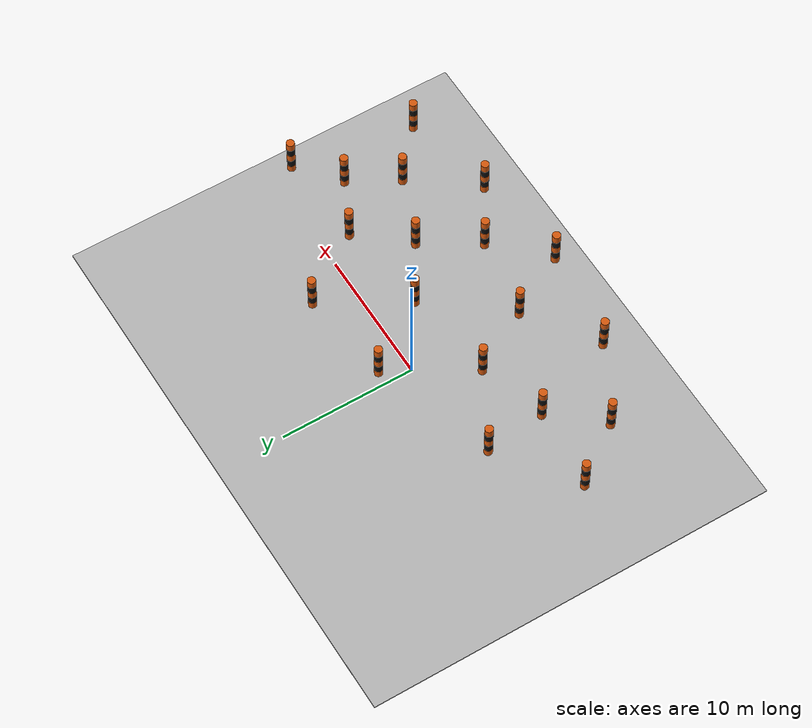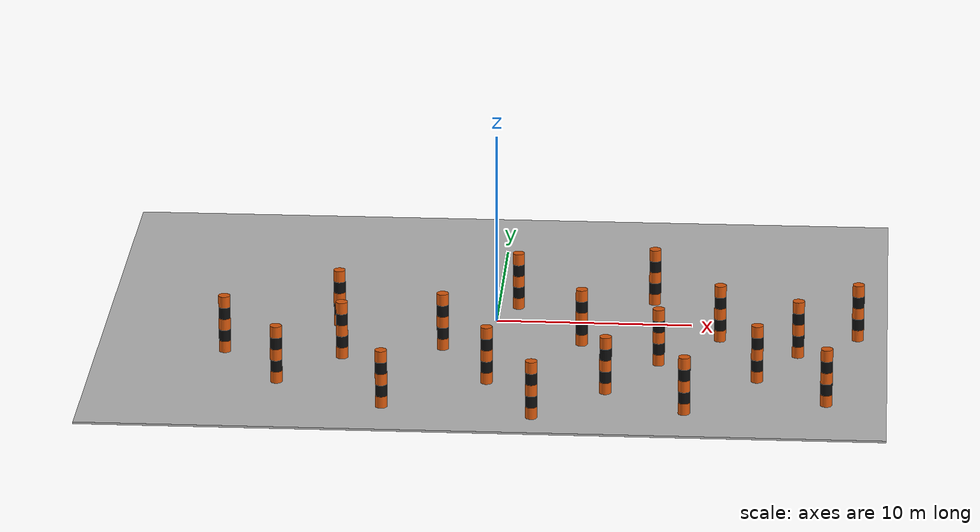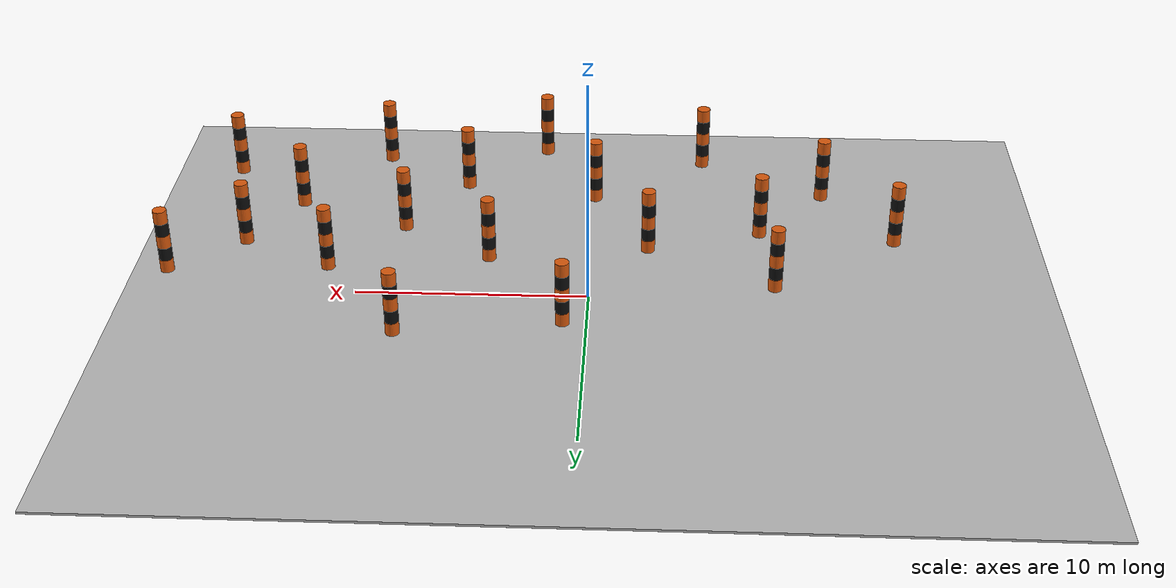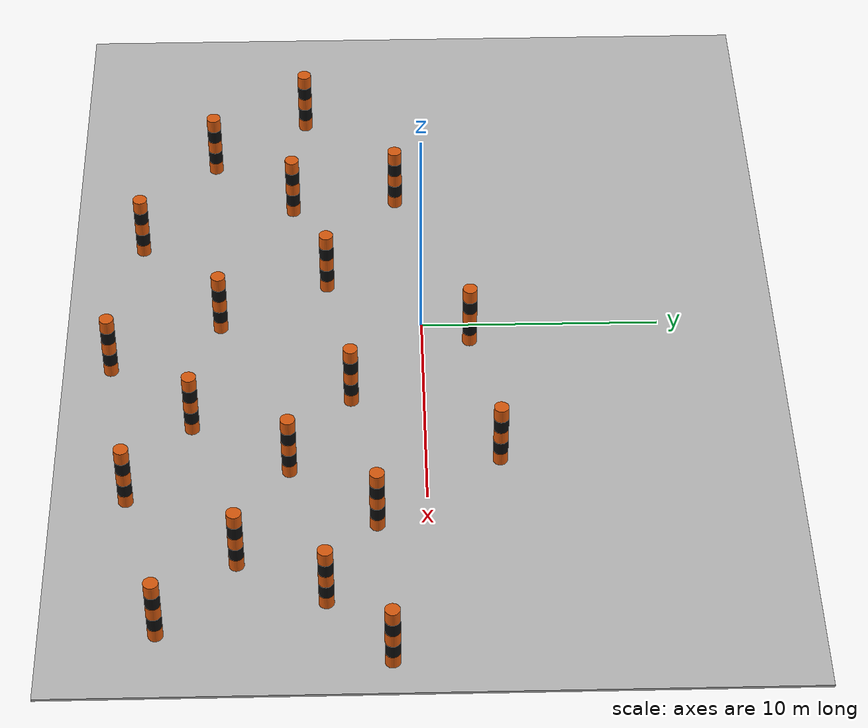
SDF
<sdf version="1.6">
 <world name="u_shape_lightweight">
  <model name="ground">
   <static>true</static>
   <link name="link">
    <collision name="collision"><geometry><box><size>40 30 0.1</size></box></geometry></collision>
    <visual name="visual"><geometry><box><size>40 30 0.1</size></box></geometry></visual>
   </link>
   <pose>0 0 -0.05 0 0 0</pose>
  </model>
  <model name="pole_04">
   <static>true</static>
   <pose>1 2 0 0 0 0</pose>
   <link name="link">
    <collision name="collision">
     <pose>0 0 1.5 0 0 0</pose>
     <geometry><cylinder><radius>0.30</radius><length>3.0</length></cylinder></geometry>
    </collision>
    <visual name="b1">
     <pose>0 0 0.3 0 0 0</pose>
     <geometry><cylinder><radius>0.30</radius><length>0.6</length></cylinder></geometry>
     <material><ambient>0.85 0.35 0.05 1</ambient><diffuse>0.85 0.35 0.05 1</diffuse></material>
    </visual>
    <visual name="b2">
     <pose>0 0 0.9 0 0 0</pose>
     <geometry><cylinder><radius>0.30</radius><length>0.6</length></cylinder></geometry>
     <material><ambient>0.05 0.05 0.05 1</ambient><diffuse>0.05 0.05 0.05 1</diffuse></material>
    </visual>
    <visual name="b3">
     <pose>0 0 1.5 0 0 0</pose>
     <geometry><cylinder><radius>0.30</radius><length>0.6</length></cylinder></geometry>
     <material><ambient>0.85 0.35 0.05 1</ambient><diffuse>0.85 0.35 0.05 1</diffuse></material>
    </visual>
    <visual name="b4">
     <pose>0 0 2.1 0 0 0</pose>
     <geometry><cylinder><radius>0.30</radius><length>0.6</length></cylinder></geometry>
     <material><ambient>0.05 0.05 0.05 1</ambient><diffuse>0.05 0.05 0.05 1</diffuse></material>
    </visual>
    <visual name="b5">
     <pose>0 0 2.7 0 0 0</pose>
     <geometry><cylinder><radius>0.30</radius><length>0.6</length></cylinder></geometry>
     <material><ambient>0.85 0.35 0.05 1</ambient><diffuse>0.85 0.35 0.05 1</diffuse></material>
    </visual>
   </link>
  </model>
  <model name="pole_21">
   <static>true</static>
   <pose>-8 -1 0 0 0 0</pose>
   <link name="link">
    <collision name="collision">
     <pose>0 0 1.5 0 0 0</pose>
     <geometry><cylinder><radius>0.30</radius><length>3.0</length></cylinder></geometry>
    </collision>
    <visual name="b1">
     <pose>0 0 0.3 0 0 0</pose>
     <geometry><cylinder><radius>0.30</radius><length>0.6</length></cylinder></geometry>
     <material><ambient>0.85 0.35 0.05 1</ambient><diffuse>0.85 0.35 0.05 1</diffuse></material>
    </visual>
    <visual name="b2">
     <pose>0 0 0.9 0 0 0</pose>
     <geometry><cylinder><radius>0.30</radius><length>0.6</length></cylinder></geometry>
     <material><ambient>0.05 0.05 0.05 1</ambient><diffuse>0.05 0.05 0.05 1</diffuse></material>
    </visual>
    <visual name="b3">
     <pose>0 0 1.5 0 0 0</pose>
     <geometry><cylinder><radius>0.30</radius><length>0.6</length></cylinder></geometry>
     <material><ambient>0.85 0.35 0.05 1</ambient><diffuse>0.85 0.35 0.05 1</diffuse></material>
    </visual>
    <visual name="b4">
     <pose>0 0 2.1 0 0 0</pose>
     <geometry><cylinder><radius>0.30</radius><length>0.6</length></cylinder></geometry>
     <material><ambient>0.05 0.05 0.05 1</ambient><diffuse>0.05 0.05 0.05 1</diffuse></material>
    </visual>
    <visual name="b5">
     <pose>0 0 2.7 0 0 0</pose>
     <geometry><cylinder><radius>0.30</radius><length>0.6</length></cylinder></geometry>
     <material><ambient>0.85 0.35 0.05 1</ambient><diffuse>0.85 0.35 0.05 1</diffuse></material>
    </visual>
   </link>
  </model>
  <model name="pole_23">
   <static>true</static>
   <pose>8 3 0 0 0 0</pose>
   <link name="link">
    <collision name="collision">
     <pose>0 0 1.5 0 0 0</pose>
     <geometry><cylinder><radius>0.30</radius><length>3.0</length></cylinder></geometry>
    </collision>
    <visual name="b1">
     <pose>0 0 0.3 0 0 0</pose>
     <geometry><cylinder><radius>0.30</radius><length>0.6</length></cylinder></geometry>
     <material><ambient>0.85 0.35 0.05 1</ambient><diffuse>0.85 0.35 0.05 1</diffuse></material>
    </visual>
    <visual name="b2">
     <pose>0 0 0.9 0 0 0</pose>
     <geometry><cylinder><radius>0.30</radius><length>0.6</length></cylinder></geometry>
     <material><ambient>0.05 0.05 0.05 1</ambient><diffuse>0.05 0.05 0.05 1</diffuse></material>
    </visual>
    <visual name="b3">
     <pose>0 0 1.5 0 0 0</pose>
     <geometry><cylinder><radius>0.30</radius><length>0.6</length></cylinder></geometry>
     <material><ambient>0.85 0.35 0.05 1</ambient><diffuse>0.85 0.35 0.05 1</diffuse></material>
    </visual>
    <visual name="b4">
     <pose>0 0 2.1 0 0 0</pose>
     <geometry><cylinder><radius>0.30</radius><length>0.6</length></cylinder></geometry>
     <material><ambient>0.05 0.05 0.05 1</ambient><diffuse>0.05 0.05 0.05 1</diffuse></material>
    </visual>
    <visual name="b5">
     <pose>0 0 2.7 0 0 0</pose>
     <geometry><cylinder><radius>0.30</radius><length>0.6</length></cylinder></geometry>
     <material><ambient>0.85 0.35 0.05 1</ambient><diffuse>0.85 0.35 0.05 1</diffuse></material>
    </visual>
   </link>
  </model>
  <model name="pole_25">
   <static>true</static>
   <pose>-13.5 -5 0 0 0 0</pose>
   <link name="link">
    <collision name="collision">
     <pose>0 0 1.5 0 0 0</pose>
     <geometry><cylinder><radius>0.30</radius><length>3.0</length></cylinder></geometry>
    </collision>
    <visual name="b1">
     <pose>0 0 0.3 0 0 0</pose>
     <geometry><cylinder><radius>0.30</radius><length>0.6</length></cylinder></geometry>
     <material><ambient>0.85 0.35 0.05 1</ambient><diffuse>0.85 0.35 0.05 1</diffuse></material>
    </visual>
    <visual name="b2">
     <pose>0 0 0.9 0 0 0</pose>
     <geometry><cylinder><radius>0.30</radius><length>0.6</length></cylinder></geometry>
     <material><ambient>0.05 0.05 0.05 1</ambient><diffuse>0.05 0.05 0.05 1</diffuse></material>
    </visual>
    <visual name="b3">
     <pose>0 0 1.5 0 0 0</pose>
     <geometry><cylinder><radius>0.30</radius><length>0.6</length></cylinder></geometry>
     <material><ambient>0.85 0.35 0.05 1</ambient><diffuse>0.85 0.35 0.05 1</diffuse></material>
    </visual>
    <visual name="b4">
     <pose>0 0 2.1 0 0 0</pose>
     <geometry><cylinder><radius>0.30</radius><length>0.6</length></cylinder></geometry>
     <material><ambient>0.05 0.05 0.05 1</ambient><diffuse>0.05 0.05 0.05 1</diffuse></material>
    </visual>
    <visual name="b5">
     <pose>0 0 2.7 0 0 0</pose>
     <geometry><cylinder><radius>0.30</radius><length>0.6</length></cylinder></geometry>
     <material><ambient>0.85 0.35 0.05 1</ambient><diffuse>0.85 0.35 0.05 1</diffuse></material>
    </visual>
   </link>
  </model>
  <model name="pole_26">
   <static>true</static>
   <pose>-10.5 -9 0 0 0 0</pose>
   <link name="link">
    <collision name="collision">
     <pose>0 0 1.5 0 0 0</pose>
     <geometry><cylinder><radius>0.30</radius><length>3.0</length></cylinder></geometry>
    </collision>
    <visual name="b1">
     <pose>0 0 0.3 0 0 0</pose>
     <geometry><cylinder><radius>0.30</radius><length>0.6</length></cylinder></geometry>
     <material><ambient>0.85 0.35 0.05 1</ambient><diffuse>0.85 0.35 0.05 1</diffuse></material>
    </visual>
    <visual name="b2">
     <pose>0 0 0.9 0 0 0</pose>
     <geometry><cylinder><radius>0.30</radius><length>0.6</length></cylinder></geometry>
     <material><ambient>0.05 0.05 0.05 1</ambient><diffuse>0.05 0.05 0.05 1</diffuse></material>
    </visual>
    <visual name="b3">
     <pose>0 0 1.5 0 0 0</pose>
     <geometry><cylinder><radius>0.30</radius><length>0.6</length></cylinder></geometry>
     <material><ambient>0.85 0.35 0.05 1</ambient><diffuse>0.85 0.35 0.05 1</diffuse></material>
    </visual>
    <visual name="b4">
     <pose>0 0 2.1 0 0 0</pose>
     <geometry><cylinder><radius>0.30</radius><length>0.6</length></cylinder></geometry>
     <material><ambient>0.05 0.05 0.05 1</ambient><diffuse>0.05 0.05 0.05 1</diffuse></material>
    </visual>
    <visual name="b5">
     <pose>0 0 2.7 0 0 0</pose>
     <geometry><cylinder><radius>0.30</radius><length>0.6</length></cylinder></geometry>
     <material><ambient>0.85 0.35 0.05 1</ambient><diffuse>0.85 0.35 0.05 1</diffuse></material>
    </visual>
   </link>
  </model>
  <model name="pole_27">
   <static>true</static>
   <pose>-7.5 -5.5 0 0 0 0</pose>
   <link name="link">
    <collision name="collision">
     <pose>0 0 1.5 0 0 0</pose>
     <geometry><cylinder><radius>0.30</radius><length>3.0</length></cylinder></geometry>
    </collision>
    <visual name="b1">
     <pose>0 0 0.3 0 0 0</pose>
     <geometry><cylinder><radius>0.30</radius><length>0.6</length></cylinder></geometry>
     <material><ambient>0.85 0.35 0.05 1</ambient><diffuse>0.85 0.35 0.05 1</diffuse></material>
    </visual>
    <visual name="b2">
     <pose>0 0 0.9 0 0 0</pose>
     <geometry><cylinder><radius>0.30</radius><length>0.6</length></cylinder></geometry>
     <material><ambient>0.05 0.05 0.05 1</ambient><diffuse>0.05 0.05 0.05 1</diffuse></material>
    </visual>
    <visual name="b3">
     <pose>0 0 1.5 0 0 0</pose>
     <geometry><cylinder><radius>0.30</radius><length>0.6</length></cylinder></geometry>
     <material><ambient>0.85 0.35 0.05 1</ambient><diffuse>0.85 0.35 0.05 1</diffuse></material>
    </visual>
    <visual name="b4">
     <pose>0 0 2.1 0 0 0</pose>
     <geometry><cylinder><radius>0.30</radius><length>0.6</length></cylinder></geometry>
     <material><ambient>0.05 0.05 0.05 1</ambient><diffuse>0.05 0.05 0.05 1</diffuse></material>
    </visual>
    <visual name="b5">
     <pose>0 0 2.7 0 0 0</pose>
     <geometry><cylinder><radius>0.30</radius><length>0.6</length></cylinder></geometry>
     <material><ambient>0.85 0.35 0.05 1</ambient><diffuse>0.85 0.35 0.05 1</diffuse></material>
    </visual>
   </link>
  </model>
  <model name="pole_28">
   <static>true</static>
   <pose>-5 -12 0 0 0 0</pose>
   <link name="link">
    <collision name="collision">
     <pose>0 0 1.5 0 0 0</pose>
     <geometry><cylinder><radius>0.30</radius><length>3.0</length></cylinder></geometry>
    </collision>
    <visual name="b1">
     <pose>0 0 0.3 0 0 0</pose>
     <geometry><cylinder><radius>0.30</radius><length>0.6</length></cylinder></geometry>
     <material><ambient>0.85 0.35 0.05 1</ambient><diffuse>0.85 0.35 0.05 1</diffuse></material>
    </visual>
    <visual name="b2">
     <pose>0 0 0.9 0 0 0</pose>
     <geometry><cylinder><radius>0.30</radius><length>0.6</length></cylinder></geometry>
     <material><ambient>0.05 0.05 0.05 1</ambient><diffuse>0.05 0.05 0.05 1</diffuse></material>
    </visual>
    <visual name="b3">
     <pose>0 0 1.5 0 0 0</pose>
     <geometry><cylinder><radius>0.30</radius><length>0.6</length></cylinder></geometry>
     <material><ambient>0.85 0.35 0.05 1</ambient><diffuse>0.85 0.35 0.05 1</diffuse></material>
    </visual>
    <visual name="b4">
     <pose>0 0 2.1 0 0 0</pose>
     <geometry><cylinder><radius>0.30</radius><length>0.6</length></cylinder></geometry>
     <material><ambient>0.05 0.05 0.05 1</ambient><diffuse>0.05 0.05 0.05 1</diffuse></material>
    </visual>
    <visual name="b5">
     <pose>0 0 2.7 0 0 0</pose>
     <geometry><cylinder><radius>0.30</radius><length>0.6</length></cylinder></geometry>
     <material><ambient>0.85 0.35 0.05 1</ambient><diffuse>0.85 0.35 0.05 1</diffuse></material>
    </visual>
   </link>
  </model>
  <model name="pole_29">
   <static>true</static>
   <pose>-2.5 -4 0 0 0 0</pose>
   <link name="link">
    <collision name="collision">
     <pose>0 0 1.5 0 0 0</pose>
     <geometry><cylinder><radius>0.30</radius><length>3.0</length></cylinder></geometry>
    </collision>
    <visual name="b1">
     <pose>0 0 0.3 0 0 0</pose>
     <geometry><cylinder><radius>0.30</radius><length>0.6</length></cylinder></geometry>
     <material><ambient>0.85 0.35 0.05 1</ambient><diffuse>0.85 0.35 0.05 1</diffuse></material>
    </visual>
    <visual name="b2">
     <pose>0 0 0.9 0 0 0</pose>
     <geometry><cylinder><radius>0.30</radius><length>0.6</length></cylinder></geometry>
     <material><ambient>0.05 0.05 0.05 1</ambient><diffuse>0.05 0.05 0.05 1</diffuse></material>
    </visual>
    <visual name="b3">
     <pose>0 0 1.5 0 0 0</pose>
     <geometry><cylinder><radius>0.30</radius><length>0.6</length></cylinder></geometry>
     <material><ambient>0.85 0.35 0.05 1</ambient><diffuse>0.85 0.35 0.05 1</diffuse></material>
    </visual>
    <visual name="b4">
     <pose>0 0 2.1 0 0 0</pose>
     <geometry><cylinder><radius>0.30</radius><length>0.6</length></cylinder></geometry>
     <material><ambient>0.05 0.05 0.05 1</ambient><diffuse>0.05 0.05 0.05 1</diffuse></material>
    </visual>
    <visual name="b5">
     <pose>0 0 2.7 0 0 0</pose>
     <geometry><cylinder><radius>0.30</radius><length>0.6</length></cylinder></geometry>
     <material><ambient>0.85 0.35 0.05 1</ambient><diffuse>0.85 0.35 0.05 1</diffuse></material>
    </visual>
   </link>
  </model>
  <model name="pole_30">
   <static>true</static>
   <pose>0 -8.5 0 0 0 0</pose>
   <link name="link">
    <collision name="collision">
     <pose>0 0 1.5 0 0 0</pose>
     <geometry><cylinder><radius>0.30</radius><length>3.0</length></cylinder></geometry>
    </collision>
    <visual name="b1">
     <pose>0 0 0.3 0 0 0</pose>
     <geometry><cylinder><radius>0.30</radius><length>0.6</length></cylinder></geometry>
     <material><ambient>0.85 0.35 0.05 1</ambient><diffuse>0.85 0.35 0.05 1</diffuse></material>
    </visual>
    <visual name="b2">
     <pose>0 0 0.9 0 0 0</pose>
     <geometry><cylinder><radius>0.30</radius><length>0.6</length></cylinder></geometry>
     <material><ambient>0.05 0.05 0.05 1</ambient><diffuse>0.05 0.05 0.05 1</diffuse></material>
    </visual>
    <visual name="b3">
     <pose>0 0 1.5 0 0 0</pose>
     <geometry><cylinder><radius>0.30</radius><length>0.6</length></cylinder></geometry>
     <material><ambient>0.85 0.35 0.05 1</ambient><diffuse>0.85 0.35 0.05 1</diffuse></material>
    </visual>
    <visual name="b4">
     <pose>0 0 2.1 0 0 0</pose>
     <geometry><cylinder><radius>0.30</radius><length>0.6</length></cylinder></geometry>
     <material><ambient>0.05 0.05 0.05 1</ambient><diffuse>0.05 0.05 0.05 1</diffuse></material>
    </visual>
    <visual name="b5">
     <pose>0 0 2.7 0 0 0</pose>
     <geometry><cylinder><radius>0.30</radius><length>0.6</length></cylinder></geometry>
     <material><ambient>0.85 0.35 0.05 1</ambient><diffuse>0.85 0.35 0.05 1</diffuse></material>
    </visual>
   </link>
  </model>
  <model name="pole_31">
   <static>true</static>
   <pose>2.5 -13 0 0 0 0</pose>
   <link name="link">
    <collision name="collision">
     <pose>0 0 1.5 0 0 0</pose>
     <geometry><cylinder><radius>0.30</radius><length>3.0</length></cylinder></geometry>
    </collision>
    <visual name="b1">
     <pose>0 0 0.3 0 0 0</pose>
     <geometry><cylinder><radius>0.30</radius><length>0.6</length></cylinder></geometry>
     <material><ambient>0.85 0.35 0.05 1</ambient><diffuse>0.85 0.35 0.05 1</diffuse></material>
    </visual>
    <visual name="b2">
     <pose>0 0 0.9 0 0 0</pose>
     <geometry><cylinder><radius>0.30</radius><length>0.6</length></cylinder></geometry>
     <material><ambient>0.05 0.05 0.05 1</ambient><diffuse>0.05 0.05 0.05 1</diffuse></material>
    </visual>
    <visual name="b3">
     <pose>0 0 1.5 0 0 0</pose>
     <geometry><cylinder><radius>0.30</radius><length>0.6</length></cylinder></geometry>
     <material><ambient>0.85 0.35 0.05 1</ambient><diffuse>0.85 0.35 0.05 1</diffuse></material>
    </visual>
    <visual name="b4">
     <pose>0 0 2.1 0 0 0</pose>
     <geometry><cylinder><radius>0.30</radius><length>0.6</length></cylinder></geometry>
     <material><ambient>0.05 0.05 0.05 1</ambient><diffuse>0.05 0.05 0.05 1</diffuse></material>
    </visual>
    <visual name="b5">
     <pose>0 0 2.7 0 0 0</pose>
     <geometry><cylinder><radius>0.30</radius><length>0.6</length></cylinder></geometry>
     <material><ambient>0.85 0.35 0.05 1</ambient><diffuse>0.85 0.35 0.05 1</diffuse></material>
    </visual>
   </link>
  </model>
  <model name="pole_32">
   <static>true</static>
   <pose>4.5 -3 0 0 0 0</pose>
   <link name="link">
    <collision name="collision">
     <pose>0 0 1.5 0 0 0</pose>
     <geometry><cylinder><radius>0.30</radius><length>3.0</length></cylinder></geometry>
    </collision>
    <visual name="b1">
     <pose>0 0 0.3 0 0 0</pose>
     <geometry><cylinder><radius>0.30</radius><length>0.6</length></cylinder></geometry>
     <material><ambient>0.85 0.35 0.05 1</ambient><diffuse>0.85 0.35 0.05 1</diffuse></material>
    </visual>
    <visual name="b2">
     <pose>0 0 0.9 0 0 0</pose>
     <geometry><cylinder><radius>0.30</radius><length>0.6</length></cylinder></geometry>
     <material><ambient>0.05 0.05 0.05 1</ambient><diffuse>0.05 0.05 0.05 1</diffuse></material>
    </visual>
    <visual name="b3">
     <pose>0 0 1.5 0 0 0</pose>
     <geometry><cylinder><radius>0.30</radius><length>0.6</length></cylinder></geometry>
     <material><ambient>0.85 0.35 0.05 1</ambient><diffuse>0.85 0.35 0.05 1</diffuse></material>
    </visual>
    <visual name="b4">
     <pose>0 0 2.1 0 0 0</pose>
     <geometry><cylinder><radius>0.30</radius><length>0.6</length></cylinder></geometry>
     <material><ambient>0.05 0.05 0.05 1</ambient><diffuse>0.05 0.05 0.05 1</diffuse></material>
    </visual>
    <visual name="b5">
     <pose>0 0 2.7 0 0 0</pose>
     <geometry><cylinder><radius>0.30</radius><length>0.6</length></cylinder></geometry>
     <material><ambient>0.85 0.35 0.05 1</ambient><diffuse>0.85 0.35 0.05 1</diffuse></material>
    </visual>
   </link>
  </model>
  <model name="pole_33">
   <static>true</static>
   <pose>6 -9.5 0 0 0 0</pose>
   <link name="link">
    <collision name="collision">
     <pose>0 0 1.5 0 0 0</pose>
     <geometry><cylinder><radius>0.30</radius><length>3.0</length></cylinder></geometry>
    </collision>
    <visual name="b1">
     <pose>0 0 0.3 0 0 0</pose>
     <geometry><cylinder><radius>0.30</radius><length>0.6</length></cylinder></geometry>
     <material><ambient>0.85 0.35 0.05 1</ambient><diffuse>0.85 0.35 0.05 1</diffuse></material>
    </visual>
    <visual name="b2">
     <pose>0 0 0.9 0 0 0</pose>
     <geometry><cylinder><radius>0.30</radius><length>0.6</length></cylinder></geometry>
     <material><ambient>0.05 0.05 0.05 1</ambient><diffuse>0.05 0.05 0.05 1</diffuse></material>
    </visual>
    <visual name="b3">
     <pose>0 0 1.5 0 0 0</pose>
     <geometry><cylinder><radius>0.30</radius><length>0.6</length></cylinder></geometry>
     <material><ambient>0.85 0.35 0.05 1</ambient><diffuse>0.85 0.35 0.05 1</diffuse></material>
    </visual>
    <visual name="b4">
     <pose>0 0 2.1 0 0 0</pose>
     <geometry><cylinder><radius>0.30</radius><length>0.6</length></cylinder></geometry>
     <material><ambient>0.05 0.05 0.05 1</ambient><diffuse>0.05 0.05 0.05 1</diffuse></material>
    </visual>
    <visual name="b5">
     <pose>0 0 2.7 0 0 0</pose>
     <geometry><cylinder><radius>0.30</radius><length>0.6</length></cylinder></geometry>
     <material><ambient>0.85 0.35 0.05 1</ambient><diffuse>0.85 0.35 0.05 1</diffuse></material>
    </visual>
   </link>
  </model>
  <model name="pole_34">
   <static>true</static>
   <pose>8.5 -5.5 0 0 0 0</pose>
   <link name="link">
    <collision name="collision">
     <pose>0 0 1.5 0 0 0</pose>
     <geometry><cylinder><radius>0.30</radius><length>3.0</length></cylinder></geometry>
    </collision>
    <visual name="b1">
     <pose>0 0 0.3 0 0 0</pose>
     <geometry><cylinder><radius>0.30</radius><length>0.6</length></cylinder></geometry>
     <material><ambient>0.85 0.35 0.05 1</ambient><diffuse>0.85 0.35 0.05 1</diffuse></material>
    </visual>
    <visual name="b2">
     <pose>0 0 0.9 0 0 0</pose>
     <geometry><cylinder><radius>0.30</radius><length>0.6</length></cylinder></geometry>
     <material><ambient>0.05 0.05 0.05 1</ambient><diffuse>0.05 0.05 0.05 1</diffuse></material>
    </visual>
    <visual name="b3">
     <pose>0 0 1.5 0 0 0</pose>
     <geometry><cylinder><radius>0.30</radius><length>0.6</length></cylinder></geometry>
     <material><ambient>0.85 0.35 0.05 1</ambient><diffuse>0.85 0.35 0.05 1</diffuse></material>
    </visual>
    <visual name="b4">
     <pose>0 0 2.1 0 0 0</pose>
     <geometry><cylinder><radius>0.30</radius><length>0.6</length></cylinder></geometry>
     <material><ambient>0.05 0.05 0.05 1</ambient><diffuse>0.05 0.05 0.05 1</diffuse></material>
    </visual>
    <visual name="b5">
     <pose>0 0 2.7 0 0 0</pose>
     <geometry><cylinder><radius>0.30</radius><length>0.6</length></cylinder></geometry>
     <material><ambient>0.85 0.35 0.05 1</ambient><diffuse>0.85 0.35 0.05 1</diffuse></material>
    </visual>
   </link>
  </model>
  <model name="pole_35">
   <static>true</static>
   <pose>10 -12 0 0 0 0</pose>
   <link name="link">
    <collision name="collision">
     <pose>0 0 1.5 0 0 0</pose>
     <geometry><cylinder><radius>0.30</radius><length>3.0</length></cylinder></geometry>
    </collision>
    <visual name="b1">
     <pose>0 0 0.3 0 0 0</pose>
     <geometry><cylinder><radius>0.30</radius><length>0.6</length></cylinder></geometry>
     <material><ambient>0.85 0.35 0.05 1</ambient><diffuse>0.85 0.35 0.05 1</diffuse></material>
    </visual>
    <visual name="b2">
     <pose>0 0 0.9 0 0 0</pose>
     <geometry><cylinder><radius>0.30</radius><length>0.6</length></cylinder></geometry>
     <material><ambient>0.05 0.05 0.05 1</ambient><diffuse>0.05 0.05 0.05 1</diffuse></material>
    </visual>
    <visual name="b3">
     <pose>0 0 1.5 0 0 0</pose>
     <geometry><cylinder><radius>0.30</radius><length>0.6</length></cylinder></geometry>
     <material><ambient>0.85 0.35 0.05 1</ambient><diffuse>0.85 0.35 0.05 1</diffuse></material>
    </visual>
    <visual name="b4">
     <pose>0 0 2.1 0 0 0</pose>
     <geometry><cylinder><radius>0.30</radius><length>0.6</length></cylinder></geometry>
     <material><ambient>0.05 0.05 0.05 1</ambient><diffuse>0.05 0.05 0.05 1</diffuse></material>
    </visual>
    <visual name="b5">
     <pose>0 0 2.7 0 0 0</pose>
     <geometry><cylinder><radius>0.30</radius><length>0.6</length></cylinder></geometry>
     <material><ambient>0.85 0.35 0.05 1</ambient><diffuse>0.85 0.35 0.05 1</diffuse></material>
    </visual>
   </link>
  </model>
  <model name="pole_36">
   <static>true</static>
   <pose>11.5 -2 0 0 0 0</pose>
   <link name="link">
    <collision name="collision">
     <pose>0 0 1.5 0 0 0</pose>
     <geometry><cylinder><radius>0.30</radius><length>3.0</length></cylinder></geometry>
    </collision>
    <visual name="b1">
     <pose>0 0 0.3 0 0 0</pose>
     <geometry><cylinder><radius>0.30</radius><length>0.6</length></cylinder></geometry>
     <material><ambient>0.85 0.35 0.05 1</ambient><diffuse>0.85 0.35 0.05 1</diffuse></material>
    </visual>
    <visual name="b2">
     <pose>0 0 0.9 0 0 0</pose>
     <geometry><cylinder><radius>0.30</radius><length>0.6</length></cylinder></geometry>
     <material><ambient>0.05 0.05 0.05 1</ambient><diffuse>0.05 0.05 0.05 1</diffuse></material>
    </visual>
    <visual name="b3">
     <pose>0 0 1.5 0 0 0</pose>
     <geometry><cylinder><radius>0.30</radius><length>0.6</length></cylinder></geometry>
     <material><ambient>0.85 0.35 0.05 1</ambient><diffuse>0.85 0.35 0.05 1</diffuse></material>
    </visual>
    <visual name="b4">
     <pose>0 0 2.1 0 0 0</pose>
     <geometry><cylinder><radius>0.30</radius><length>0.6</length></cylinder></geometry>
     <material><ambient>0.05 0.05 0.05 1</ambient><diffuse>0.05 0.05 0.05 1</diffuse></material>
    </visual>
    <visual name="b5">
     <pose>0 0 2.7 0 0 0</pose>
     <geometry><cylinder><radius>0.30</radius><length>0.6</length></cylinder></geometry>
     <material><ambient>0.85 0.35 0.05 1</ambient><diffuse>0.85 0.35 0.05 1</diffuse></material>
    </visual>
   </link>
  </model>
  <model name="pole_37">
   <static>true</static>
   <pose>13.5 -7.5 0 0 0 0</pose>
   <link name="link">
    <collision name="collision">
     <pose>0 0 1.5 0 0 0</pose>
     <geometry><cylinder><radius>0.30</radius><length>3.0</length></cylinder></geometry>
    </collision>
    <visual name="b1">
     <pose>0 0 0.3 0 0 0</pose>
     <geometry><cylinder><radius>0.30</radius><length>0.6</length></cylinder></geometry>
     <material><ambient>0.85 0.35 0.05 1</ambient><diffuse>0.85 0.35 0.05 1</diffuse></material>
    </visual>
    <visual name="b2">
     <pose>0 0 0.9 0 0 0</pose>
     <geometry><cylinder><radius>0.30</radius><length>0.6</length></cylinder></geometry>
     <material><ambient>0.05 0.05 0.05 1</ambient><diffuse>0.05 0.05 0.05 1</diffuse></material>
    </visual>
    <visual name="b3">
     <pose>0 0 1.5 0 0 0</pose>
     <geometry><cylinder><radius>0.30</radius><length>0.6</length></cylinder></geometry>
     <material><ambient>0.85 0.35 0.05 1</ambient><diffuse>0.85 0.35 0.05 1</diffuse></material>
    </visual>
    <visual name="b4">
     <pose>0 0 2.1 0 0 0</pose>
     <geometry><cylinder><radius>0.30</radius><length>0.6</length></cylinder></geometry>
     <material><ambient>0.05 0.05 0.05 1</ambient><diffuse>0.05 0.05 0.05 1</diffuse></material>
    </visual>
    <visual name="b5">
     <pose>0 0 2.7 0 0 0</pose>
     <geometry><cylinder><radius>0.30</radius><length>0.6</length></cylinder></geometry>
     <material><ambient>0.85 0.35 0.05 1</ambient><diffuse>0.85 0.35 0.05 1</diffuse></material>
    </visual>
   </link>
  </model>
  <model name="pole_38">
   <static>true</static>
   <pose>15.5 -4 0 0 0 0</pose>
   <link name="link">
    <collision name="collision">
     <pose>0 0 1.5 0 0 0</pose>
     <geometry><cylinder><radius>0.30</radius><length>3.0</length></cylinder></geometry>
    </collision>
    <visual name="b1">
     <pose>0 0 0.3 0 0 0</pose>
     <geometry><cylinder><radius>0.30</radius><length>0.6</length></cylinder></geometry>
     <material><ambient>0.85 0.35 0.05 1</ambient><diffuse>0.85 0.35 0.05 1</diffuse></material>
    </visual>
    <visual name="b2">
     <pose>0 0 0.9 0 0 0</pose>
     <geometry><cylinder><radius>0.30</radius><length>0.6</length></cylinder></geometry>
     <material><ambient>0.05 0.05 0.05 1</ambient><diffuse>0.05 0.05 0.05 1</diffuse></material>
    </visual>
    <visual name="b3">
     <pose>0 0 1.5 0 0 0</pose>
     <geometry><cylinder><radius>0.30</radius><length>0.6</length></cylinder></geometry>
     <material><ambient>0.85 0.35 0.05 1</ambient><diffuse>0.85 0.35 0.05 1</diffuse></material>
    </visual>
    <visual name="b4">
     <pose>0 0 2.1 0 0 0</pose>
     <geometry><cylinder><radius>0.30</radius><length>0.6</length></cylinder></geometry>
     <material><ambient>0.05 0.05 0.05 1</ambient><diffuse>0.05 0.05 0.05 1</diffuse></material>
    </visual>
    <visual name="b5">
     <pose>0 0 2.7 0 0 0</pose>
     <geometry><cylinder><radius>0.30</radius><length>0.6</length></cylinder></geometry>
     <material><ambient>0.85 0.35 0.05 1</ambient><diffuse>0.85 0.35 0.05 1</diffuse></material>
    </visual>
   </link>
  </model>
  <model name="pole_39">
   <static>true</static>
   <pose>17 -10.5 0 0 0 0</pose>
   <link name="link">
    <collision name="collision">
     <pose>0 0 1.5 0 0 0</pose>
     <geometry><cylinder><radius>0.30</radius><length>3.0</length></cylinder></geometry>
    </collision>
    <visual name="b1">
     <pose>0 0 0.3 0 0 0</pose>
     <geometry><cylinder><radius>0.30</radius><length>0.6</length></cylinder></geometry>
     <material><ambient>0.85 0.35 0.05 1</ambient><diffuse>0.85 0.35 0.05 1</diffuse></material>
    </visual>
    <visual name="b2">
     <pose>0 0 0.9 0 0 0</pose>
     <geometry><cylinder><radius>0.30</radius><length>0.6</length></cylinder></geometry>
     <material><ambient>0.05 0.05 0.05 1</ambient><diffuse>0.05 0.05 0.05 1</diffuse></material>
    </visual>
    <visual name="b3">
     <pose>0 0 1.5 0 0 0</pose>
     <geometry><cylinder><radius>0.30</radius><length>0.6</length></cylinder></geometry>
     <material><ambient>0.85 0.35 0.05 1</ambient><diffuse>0.85 0.35 0.05 1</diffuse></material>
    </visual>
    <visual name="b4">
     <pose>0 0 2.1 0 0 0</pose>
     <geometry><cylinder><radius>0.30</radius><length>0.6</length></cylinder></geometry>
     <material><ambient>0.05 0.05 0.05 1</ambient><diffuse>0.05 0.05 0.05 1</diffuse></material>
    </visual>
    <visual name="b5">
     <pose>0 0 2.7 0 0 0</pose>
     <geometry><cylinder><radius>0.30</radius><length>0.6</length></cylinder></geometry>
     <material><ambient>0.85 0.35 0.05 1</ambient><diffuse>0.85 0.35 0.05 1</diffuse></material>
    </visual>
   </link>
  </model>
  <model name="pole_40">
   <static>true</static>
   <pose>18.5 -1.5 0 0 0 0</pose>
   <link name="link">
    <collision name="collision">
     <pose>0 0 1.5 0 0 0</pose>
     <geometry><cylinder><radius>0.30</radius><length>3.0</length></cylinder></geometry>
    </collision>
    <visual name="b1">
     <pose>0 0 0.3 0 0 0</pose>
     <geometry><cylinder><radius>0.30</radius><length>0.6</length></cylinder></geometry>
     <material><ambient>0.85 0.35 0.05 1</ambient><diffuse>0.85 0.35 0.05 1</diffuse></material>
    </visual>
    <visual name="b2">
     <pose>0 0 0.9 0 0 0</pose>
     <geometry><cylinder><radius>0.30</radius><length>0.6</length></cylinder></geometry>
     <material><ambient>0.05 0.05 0.05 1</ambient><diffuse>0.05 0.05 0.05 1</diffuse></material>
    </visual>
    <visual name="b3">
     <pose>0 0 1.5 0 0 0</pose>
     <geometry><cylinder><radius>0.30</radius><length>0.6</length></cylinder></geometry>
     <material><ambient>0.85 0.35 0.05 1</ambient><diffuse>0.85 0.35 0.05 1</diffuse></material>
    </visual>
    <visual name="b4">
     <pose>0 0 2.1 0 0 0</pose>
     <geometry><cylinder><radius>0.30</radius><length>0.6</length></cylinder></geometry>
     <material><ambient>0.05 0.05 0.05 1</ambient><diffuse>0.05 0.05 0.05 1</diffuse></material>
    </visual>
    <visual name="b5">
     <pose>0 0 2.7 0 0 0</pose>
     <geometry><cylinder><radius>0.30</radius><length>0.6</length></cylinder></geometry>
     <material><ambient>0.85 0.35 0.05 1</ambient><diffuse>0.85 0.35 0.05 1</diffuse></material>
    </visual>
   </link>
  </model>
 </world>
</sdf>
